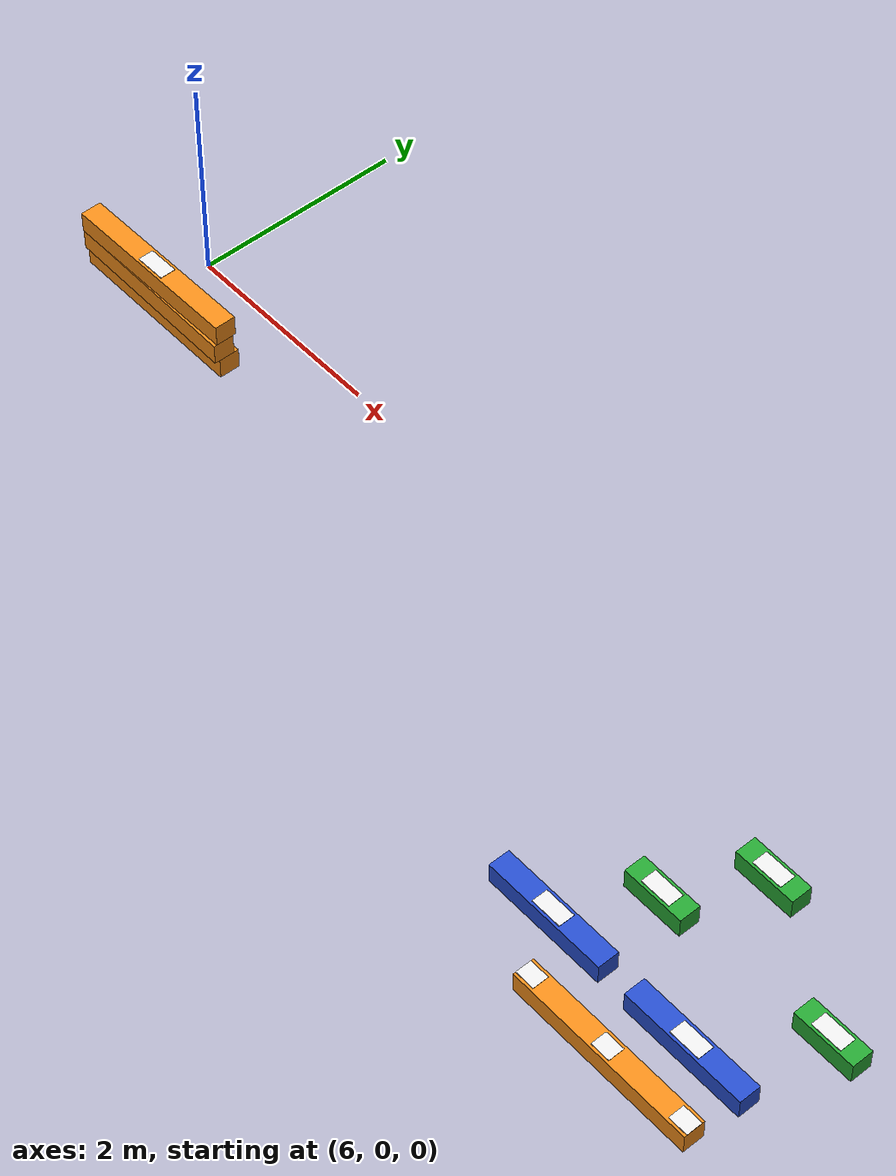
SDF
<sdf version="1.6">
 <world name="default">
  <model name="brick_orange_42">
   <static>1</static>
   <link name="link">
    <pose>0 0 0.1 0 -0 0</pose>
    <inertial>
     <mass>2</mass>
     <inertia>
      <ixx>0.00252984</ixx>
      <ixy>0</ixy>
      <ixz>0</ixz>
      <iyy>0.046802</iyy>
      <iyz>0</iyz>
      <izz>0.046802</izz>
     </inertia>
    </inertial>
    <visual name="main_box">
     <geometry><box><size>1.8 0.2 0.2</size></box></geometry>
     <material>
      <script><uri>file://media/materials/scripts/gazebo.material</uri><name>Gazebo/Orange</name></script>
     </material>
    </visual>
    <visual name="white_plate">
     <pose>0 0 0.1 0 -0 0</pose>
     <geometry><box><size>0.3 0.15 0.006</size></box></geometry>
     <material>
      <script><uri>file://media/materials/scripts/gazebo.material</uri><name>Gazebo/White</name></script>
     </material>
    </visual>
    <collision name="collision"><geometry><box><size>1.8 0.2 0.2</size></box></geometry></collision>
   </link>
   <pose>6.18963 -0.636883 0 0 -0 0.000635</pose>
  </model>
  <model name="brick_orange_43">
   <static>1</static>
   <link name="link">
    <pose>0 0 0.1 0 -0 0</pose>
    <inertial>
     <mass>2</mass>
     <inertia>
      <ixx>0.00252984</ixx>
      <ixy>0</ixy>
      <ixz>0</ixz>
      <iyy>0.046802</iyy>
      <iyz>0</iyz>
      <izz>0.046802</izz>
     </inertia>
    </inertial>
    <visual name="main_box">
     <geometry><box><size>1.8 0.2 0.2</size></box></geometry>
     <material>
      <script><uri>file://media/materials/scripts/gazebo.material</uri><name>Gazebo/Orange</name></script>
     </material>
    </visual>
    <visual name="white_plate">
     <pose>0 0 0.1 0 -0 0</pose>
     <geometry><box><size>0.3 0.15 0.006</size></box></geometry>
     <material>
      <script><uri>file://media/materials/scripts/gazebo.material</uri><name>Gazebo/White</name></script>
     </material>
    </visual>
    <collision name="collision"><geometry><box><size>1.8 0.2 0.2</size></box></geometry></collision>
   </link>
   <pose>6.18963 -0.675881 0.202 0 0 -0.008427</pose>
  </model>
  <model name="brick_orange_44">
   <static>1</static>
   <link name="link">
    <pose>0 0 0.1 0 -0 0</pose>
    <inertial>
     <mass>2</mass>
     <inertia>
      <ixx>0.00252984</ixx>
      <ixy>0</ixy>
      <ixz>0</ixz>
      <iyy>0.046802</iyy>
      <iyz>0</iyz>
      <izz>0.046802</izz>
     </inertia>
    </inertial>
    <visual name="main_box">
     <geometry><box><size>1.8 0.2 0.2</size></box></geometry>
     <material>
      <script><uri>file://media/materials/scripts/gazebo.material</uri><name>Gazebo/Orange</name></script>
     </material>
    </visual>
    <visual name="white_plate">
     <pose>0 0 0.1 0 -0 0</pose>
     <geometry><box><size>0.3 0.15 0.006</size></box></geometry>
     <material>
      <script><uri>file://media/materials/scripts/gazebo.material</uri><name>Gazebo/White</name></script>
     </material>
    </visual>
    <collision name="collision"><geometry><box><size>1.8 0.2 0.2</size></box></geometry></collision>
   </link>
   <pose>6.18963 -0.664524 0.404 0 -0 0.01134</pose>
  </model>
  <model name="mbzirc_orange_brick">
   <static>0</static>
   <link name="link">
    <pose>0 0 0.1 0 -0 0</pose>
    <inertial>
     <mass>1.2</mass>
     <inertia>
      <ixx>0.007968</ixx>
      <ixy>0</ixy>
      <ixz>0</ixz>
      <iyy>0.326688</iyy>
      <iyz>0</iyz>
      <izz>0.326688</izz>
     </inertia>
    </inertial>
    <visual name="main_box">
     <geometry><box><size>1.8 0.2 0.2</size></box></geometry>
     <material>
      <script><uri>file://media/materials/scripts/gazebo.material</uri><name>Gazebo/Orange</name></script>
     </material>
    </visual>
    <visual name="white_plate_center">
     <pose>0 0 0.1 0 -0 0</pose>
     <geometry><box><size>0.19 0.15 0.006</size></box></geometry>
     <material>
      <script><uri>file://media/materials/scripts/gazebo.material</uri><name>Gazebo/White</name></script>
     </material>
    </visual>
    <visual name="white_plate_left">
     <pose>-0.805 0 0.1 0 -0 0</pose>
     <geometry><box><size>0.19 0.15 0.006</size></box></geometry>
     <material>
      <script><uri>file://media/materials/scripts/gazebo.material</uri><name>Gazebo/White</name></script>
     </material>
    </visual>
    <visual name="white_plate_right">
     <pose>0.805 0 0.1 0 -0 0</pose>
     <geometry><box><size>0.19 0.15 0.006</size></box></geometry>
     <material>
      <script><uri>file://media/materials/scripts/gazebo.material</uri><name>Gazebo/White</name></script>
     </material>
    </visual>
    <collision name="collision"><geometry><box><size>1.8 0.2 0.2</size></box></geometry></collision>
   </link>
   <pose>14.1294 -2.82737 -5.3e-05 -0.000474 -0 0.001134</pose>
  </model>
  <model name="mbzirc_blue_brick_3">
   <static>0</static>
   <link name="link">
    <pose>0 0 0.1 0 -0 0</pose>
    <inertial>
     <mass>0.381</mass>
     <inertia>
      <ixx>0.00252984</ixx>
      <ixy>0</ixy>
      <ixz>0</ixz>
      <iyy>0.046802</iyy>
      <iyz>0</iyz>
      <izz>0.046802</izz>
     </inertia>
    </inertial>
    <visual name="main_box">
     <geometry><box><size>1.2 0.2 0.2</size></box></geometry>
     <material>
      <script><uri>file://media/materials/scripts/gazebo.material</uri><name>Gazebo/Blue</name></script>
     </material>
    </visual>
    <visual name="white_plate">
     <pose>0 0 0.1 0 -0 0</pose>
     <geometry><box><size>0.3 0.15 0.006</size></box></geometry>
     <material>
      <script><uri>file://media/materials/scripts/gazebo.material</uri><name>Gazebo/White</name></script>
     </material>
    </visual>
    <collision name="collision"><geometry><box><size>1.2 0.2 0.2</size></box></geometry></collision>
   </link>
   <pose>14.4814 -2.33537 -5.3e-05 -0.000475 -0 0.000605</pose>
  </model>
  <model name="mbzirc_blue_brick_4">
   <static>0</static>
   <link name="link">
    <pose>0 0 0.1 0 -0 0</pose>
    <inertial>
     <mass>0.381</mass>
     <inertia>
      <ixx>0.00252984</ixx>
      <ixy>0</ixy>
      <ixz>0</ixz>
      <iyy>0.046802</iyy>
      <iyz>0</iyz>
      <izz>0.046802</izz>
     </inertia>
    </inertial>
    <visual name="main_box">
     <geometry><box><size>1.2 0.2 0.2</size></box></geometry>
     <material>
      <script><uri>file://media/materials/scripts/gazebo.material</uri><name>Gazebo/Blue</name></script>
     </material>
    </visual>
    <visual name="white_plate">
     <pose>0 0 0.1 0 -0 0</pose>
     <geometry><box><size>0.3 0.15 0.006</size></box></geometry>
     <material>
      <script><uri>file://media/materials/scripts/gazebo.material</uri><name>Gazebo/White</name></script>
     </material>
    </visual>
    <collision name="collision"><geometry><box><size>1.2 0.2 0.2</size></box></geometry></collision>
   </link>
   <pose>12.9941 -2.32331 -5.3e-05 0.000475 0 0.000889</pose>
  </model>
  <model name="mbzirc_green_brick_3">
   <static>0</static>
   <link name="link">
    <pose>0 0 0.1 0 -0 0</pose>
    <inertial>
     <mass>0.485</mass>
     <inertia>
      <ixx>0.00322</ixx>
      <ixy>0</ixy>
      <ixz>0</ixz>
      <iyy>0.016102</iyy>
      <iyz>0</iyz>
      <izz>0.016102</izz>
     </inertia>
    </inertial>
    <visual name="main_box">
     <geometry><box><size>0.6 0.2 0.2</size></box></geometry>
     <material>
      <script><uri>file://media/materials/scripts/gazebo.material</uri><name>Gazebo/Green</name></script>
     </material>
    </visual>
    <visual name="white_plate">
     <pose>0 0 0.1 0 -0 0</pose>
     <geometry><box><size>0.3 0.15 0.006</size></box></geometry>
     <material>
      <script><uri>file://media/materials/scripts/gazebo.material</uri><name>Gazebo/White</name></script>
     </material>
    </visual>
    <collision name="collision"><geometry><box><size>0.6 0.2 0.2</size></box></geometry></collision>
   </link>
   <pose>13.3889 -1.59703 -5.3e-05 -0.000482 -1e-06 0</pose>
  </model>
  <model name="mbzirc_green_brick_1">
   <static>0</static>
   <link name="link">
    <pose>0 0 0.1 0 -0 0</pose>
    <inertial>
     <mass>0.485</mass>
     <inertia>
      <ixx>0.00322</ixx>
      <ixy>0</ixy>
      <ixz>0</ixz>
      <iyy>0.016102</iyy>
      <iyz>0</iyz>
      <izz>0.016102</izz>
     </inertia>
    </inertial>
    <visual name="main_box">
     <geometry><box><size>0.6 0.2 0.2</size></box></geometry>
     <material>
      <script><uri>file://media/materials/scripts/gazebo.material</uri><name>Gazebo/Green</name></script>
     </material>
    </visual>
    <visual name="white_plate">
     <pose>0 0 0.1 0 -0 0</pose>
     <geometry><box><size>0.3 0.15 0.006</size></box></geometry>
     <material>
      <script><uri>file://media/materials/scripts/gazebo.material</uri><name>Gazebo/White</name></script>
     </material>
    </visual>
    <collision name="collision"><geometry><box><size>0.6 0.2 0.2</size></box></geometry></collision>
   </link>
   <pose>15.096 -1.52595 0 -0.000121 -0 3e-06</pose>
  </model>
  <model name="mbzirc_green_brick_10">
   <static>0</static>
   <link name="link">
    <pose>0 0 0.1 0 -0 0</pose>
    <inertial>
     <mass>0.485</mass>
     <inertia>
      <ixx>0.00322</ixx>
      <ixy>0</ixy>
      <ixz>0</ixz>
      <iyy>0.016102</iyy>
      <iyz>0</iyz>
      <izz>0.016102</izz>
     </inertia>
    </inertial>
    <visual name="main_box">
     <geometry><box><size>0.6 0.2 0.2</size></box></geometry>
     <material>
      <script><uri>file://media/materials/scripts/gazebo.material</uri><name>Gazebo/Green</name></script>
     </material>
    </visual>
    <visual name="white_plate">
     <pose>0 0 0.1 0 -0 0</pose>
     <geometry><box><size>0.3 0.15 0.006</size></box></geometry>
     <material>
      <script><uri>file://media/materials/scripts/gazebo.material</uri><name>Gazebo/White</name></script>
     </material>
    </visual>
    <collision name="collision"><geometry><box><size>0.6 0.2 0.2</size></box></geometry></collision>
   </link>
   <pose>13.8077 -0.859238 -5.3e-05 0.000482 -1e-06 0</pose>
  </model>
 </world>
</sdf>
